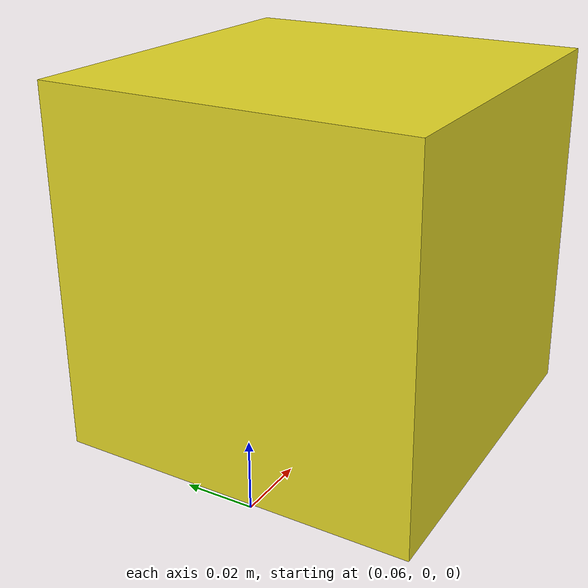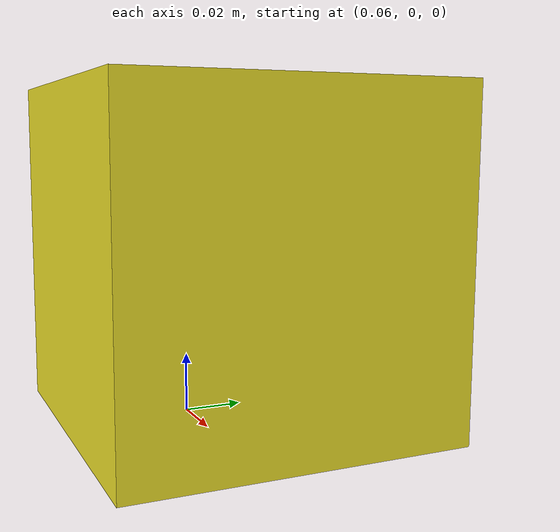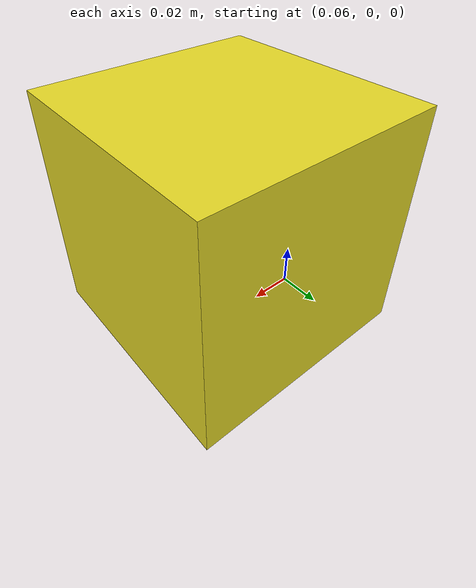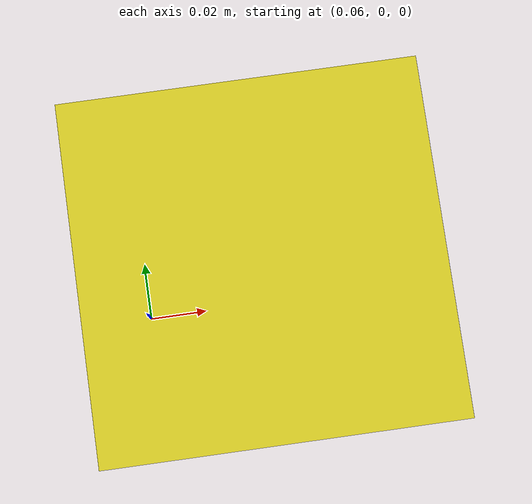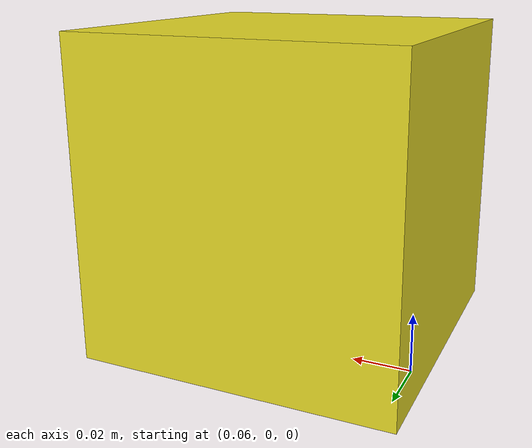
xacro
<?xml version="1.0" ?>
<robot name="cheese" xmlns:xacro="http://ros.org/wiki/xacro">

  <gazebo reference="base_link">
    <material>Gazebo/Yellow</material>
  </gazebo>

  <link name="base_footprint"/>

  <joint name="base_joint" type="fixed">
    <parent link="base_footprint"/>
    <child link="base_link"/>
    <origin xyz="0.0 0.0 0.010" rpy="0 0 0"/>
  </joint>

  <link name="base_link">
    <inertial>
      <origin xyz="0.1 0 0.05" />
      <mass value="50.0" />
      <inertia  ixx="1.0" ixy="0.0"  ixz="0.0"  iyy="100.0"  iyz="0.0"  izz="1.0" />
    </inertial>
    <visual>
      <origin xyz="0.1 0 0.05"/>
      <geometry>
        <box size="0.1 0.1 0.1" />
      </geometry>
    </visual>
    <collision>
      <origin xyz="0.1 0 0.05"/>
      <geometry>
        <box size="0.1 0.1 0.1" />
      </geometry>
    </collision>
  </link>

</robot>
